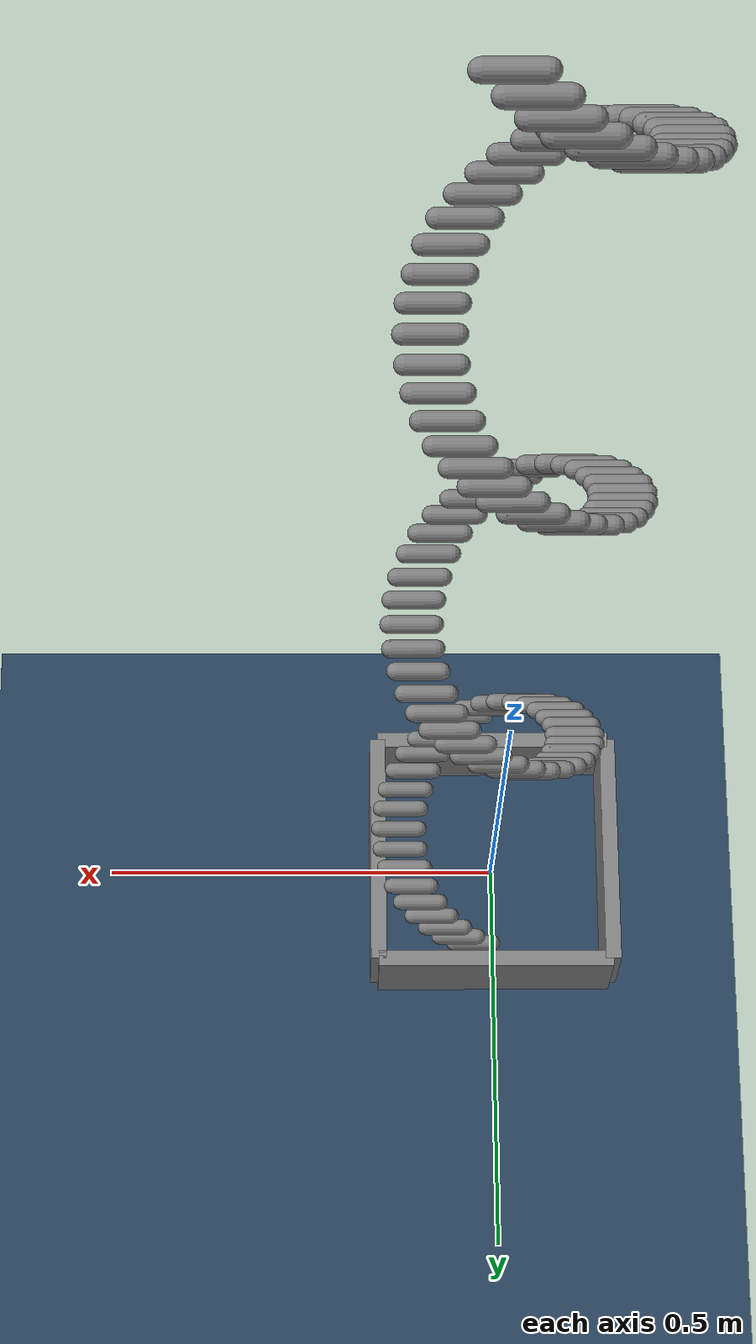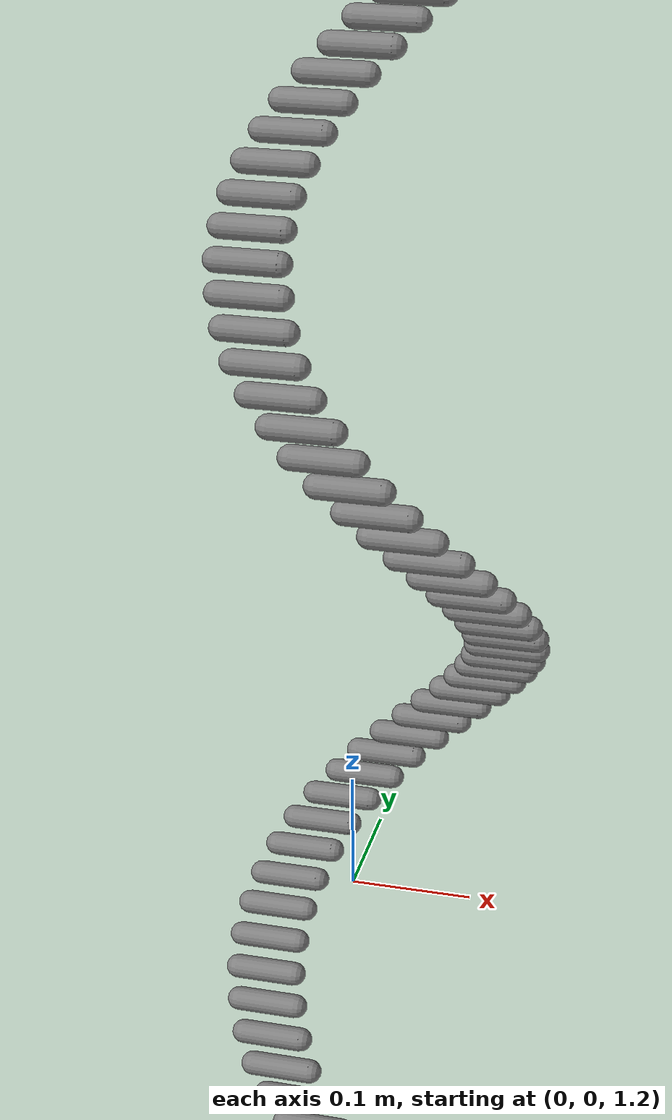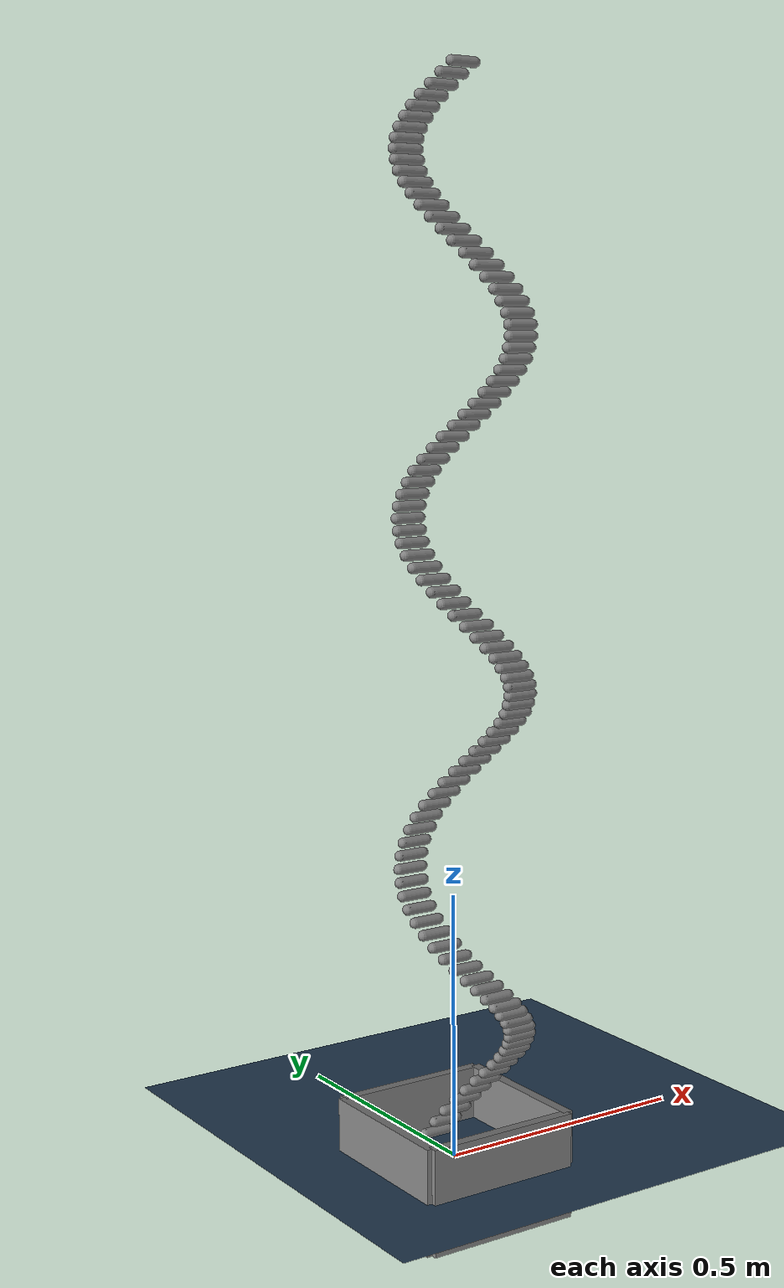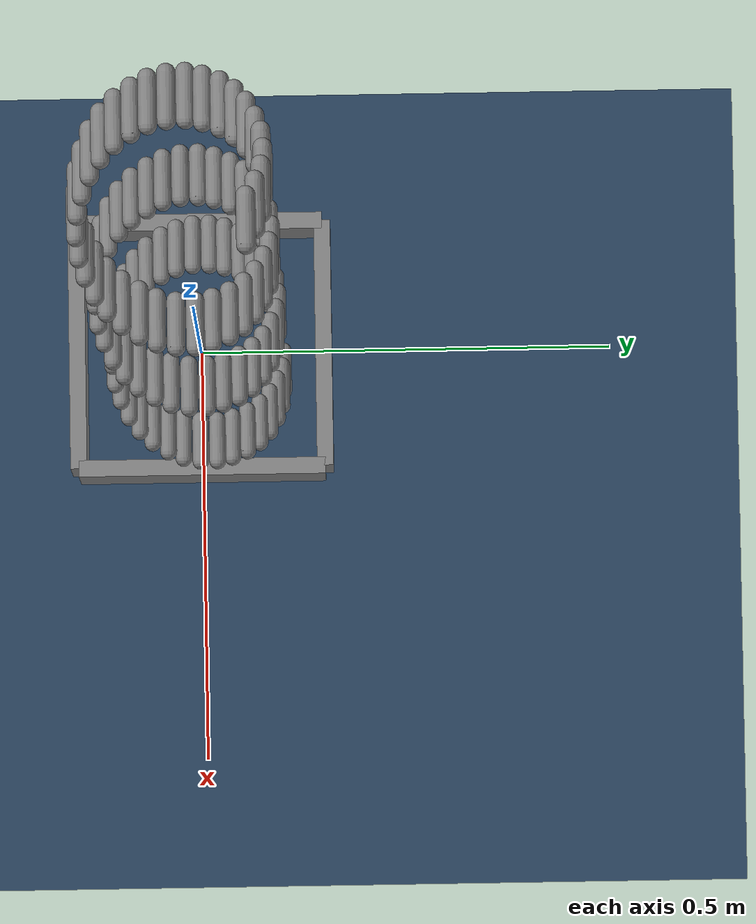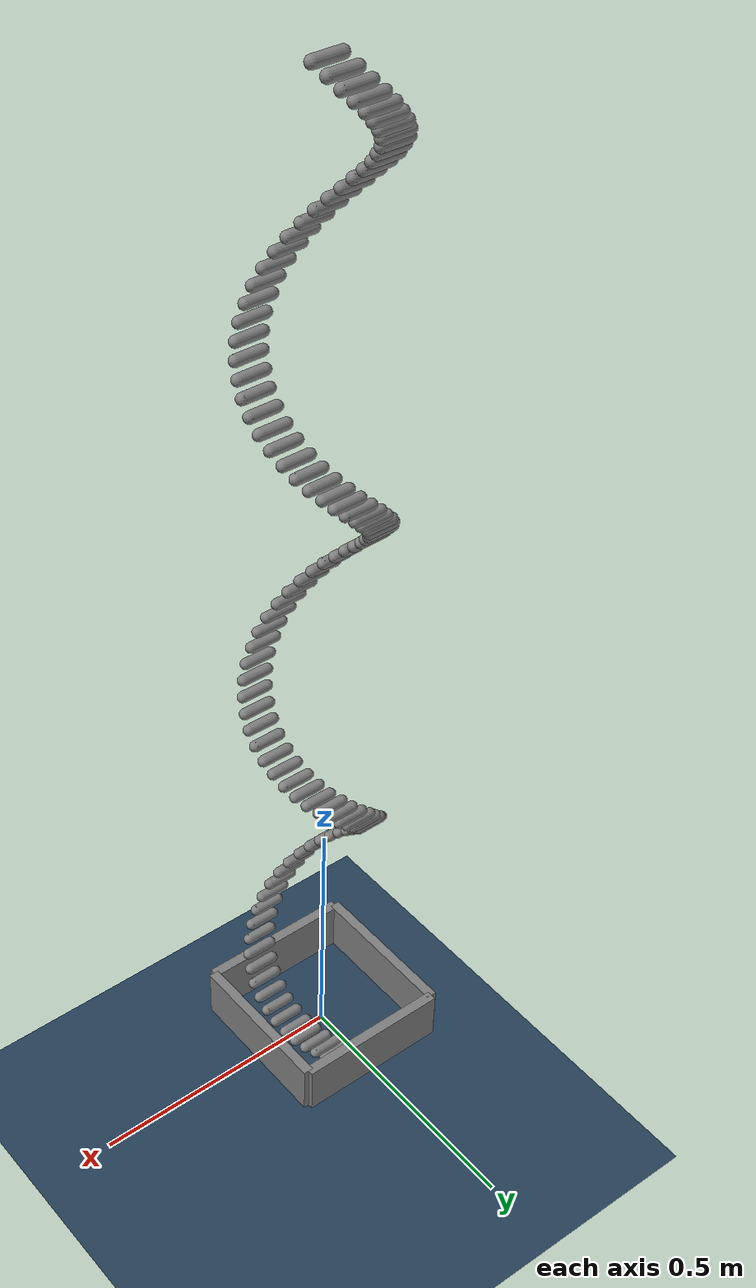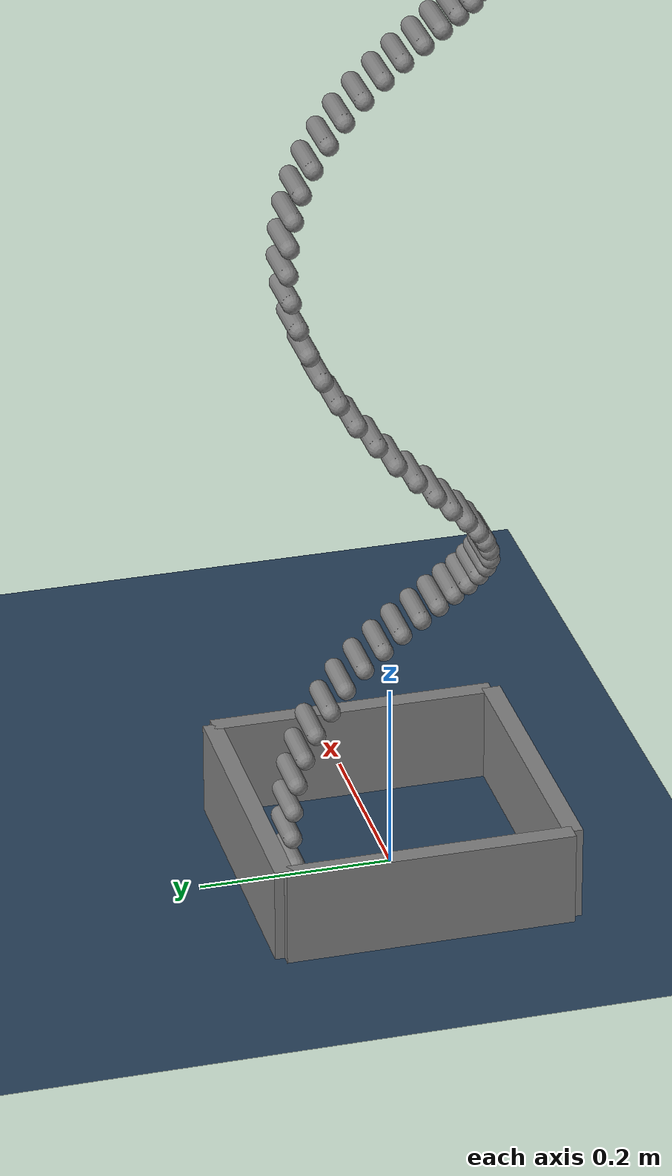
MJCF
<mujoco model="capsules">
  <option iterations="10" ls_iterations="10" timestep="0.001">
    <flag eulerdamp="disable"/>
  </option>

  <custom>
    <numeric data="200" name="max_contact_points"/>
    <numeric data="200" name="max_geom_pairs"/>
  </custom>

  <asset>
    <texture type="skybox" builtin="gradient" rgb1="0.3 0.5 0.7" rgb2="0 0 0" width="512" height="3072"/>
    <texture type="2d" name="groundplane" builtin="checker" mark="edge" rgb1="0.2 0.3 0.4" rgb2="0.1 0.2 0.3"
      markrgb="0.8 0.8 0.8" width="300" height="300"/>
    <material name="groundplane" texture="groundplane" texuniform="true" texrepeat="5 5" reflectance="0.2"/>
  </asset>

  <statistic center="0 0 0.1" extent="0.4" meansize="0.02"/>

  <visual>
    <headlight diffuse="0.6 0.6 0.6" ambient="0.3 0.3 0.3" specular="0 0 0"/>
    <rgba haze="0.15 0.25 0.35 1"/>
    <global azimuth="120" elevation="-10"/>
  </visual>

  <worldbody>
    <light pos="0 0 1.5" directional="true"/>
    <geom name="floor" size="0 0 0.05" type="plane" material="groundplane"/>
    <geom type="box" size="0.01 0.15 0.1" pos="0.15 0.0 0.0"/>
    <geom type="box" size="0.01 0.15 0.1" pos="-0.15 0.0 0.0"/>
    <geom type="box" size="0.15 0.01 0.1" pos="0.0 0.15 0.0"/>
    <geom type="box" size="0.15 0.01 0.1" pos="0.0 -0.15 0.0"/>
    <body pos="0.000 0.100 0.010">
      <freejoint/>
      <geom type="capsule" fromto="0 0 0 0.05 0 0 " size="0.01"/>
    </body>
    <body pos="0.020 0.098 0.030">
      <freejoint/>
      <geom type="capsule" fromto="0 0 0 0.05 0 0 " size="0.01"/>
    </body>
    <body pos="0.038 0.092 0.050">
      <freejoint/>
      <geom type="capsule" fromto="0 0 0 0.05 0 0 " size="0.01"/>
    </body>
    <body pos="0.056 0.083 0.070">
      <freejoint/>
      <geom type="capsule" fromto="0 0 0 0.05 0 0 " size="0.01"/>
    </body>
    <body pos="0.071 0.071 0.090">
      <freejoint/>
      <geom type="capsule" fromto="0 0 0 0.05 0 0 " size="0.01"/>
    </body>
    <body pos="0.083 0.056 0.110">
      <freejoint/>
      <geom type="capsule" fromto="0 0 0 0.05 0 0 " size="0.01"/>
    </body>
    <body pos="0.092 0.038 0.130">
      <freejoint/>
      <geom type="capsule" fromto="0 0 0 0.05 0 0 " size="0.01"/>
    </body>
    <body pos="0.098 0.020 0.150">
      <freejoint/>
      <geom type="capsule" fromto="0 0 0 0.05 0 0 " size="0.01"/>
    </body>
    <body pos="0.100 0.000 0.170">
      <freejoint/>
      <geom type="capsule" fromto="0 0 0 0.05 0 0 " size="0.01"/>
    </body>
    <body pos="0.098 -0.020 0.190">
      <freejoint/>
      <geom type="capsule" fromto="0 0 0 0.05 0 0 " size="0.01"/>
    </body>
    <body pos="0.092 -0.038 0.210">
      <freejoint/>
      <geom type="capsule" fromto="0 0 0 0.05 0 0 " size="0.01"/>
    </body>
    <body pos="0.083 -0.056 0.230">
      <freejoint/>
      <geom type="capsule" fromto="0 0 0 0.05 0 0 " size="0.01"/>
    </body>
    <body pos="0.071 -0.071 0.250">
      <freejoint/>
      <geom type="capsule" fromto="0 0 0 0.05 0 0 " size="0.01"/>
    </body>
    <body pos="0.056 -0.083 0.270">
      <freejoint/>
      <geom type="capsule" fromto="0 0 0 0.05 0 0 " size="0.01"/>
    </body>
    <body pos="0.038 -0.092 0.290">
      <freejoint/>
      <geom type="capsule" fromto="0 0 0 0.05 0 0 " size="0.01"/>
    </body>
    <body pos="0.020 -0.098 0.310">
      <freejoint/>
      <geom type="capsule" fromto="0 0 0 0.05 0 0 " size="0.01"/>
    </body>
    <body pos="0.000 -0.100 0.330">
      <freejoint/>
      <geom type="capsule" fromto="0 0 0 0.05 0 0 " size="0.01"/>
    </body>
    <body pos="-0.020 -0.098 0.350">
      <freejoint/>
      <geom type="capsule" fromto="0 0 0 0.05 0 0 " size="0.01"/>
    </body>
    <body pos="-0.038 -0.092 0.370">
      <freejoint/>
      <geom type="capsule" fromto="0 0 0 0.05 0 0 " size="0.01"/>
    </body>
    <body pos="-0.056 -0.083 0.390">
      <freejoint/>
      <geom type="capsule" fromto="0 0 0 0.05 0 0 " size="0.01"/>
    </body>
    <body pos="-0.071 -0.071 0.410">
      <freejoint/>
      <geom type="capsule" fromto="0 0 0 0.05 0 0 " size="0.01"/>
    </body>
    <body pos="-0.083 -0.056 0.430">
      <freejoint/>
      <geom type="capsule" fromto="0 0 0 0.05 0 0 " size="0.01"/>
    </body>
    <body pos="-0.092 -0.038 0.450">
      <freejoint/>
      <geom type="capsule" fromto="0 0 0 0.05 0 0 " size="0.01"/>
    </body>
    <body pos="-0.098 -0.020 0.470">
      <freejoint/>
      <geom type="capsule" fromto="0 0 0 0.05 0 0 " size="0.01"/>
    </body>
    <body pos="-0.100 -0.000 0.490">
      <freejoint/>
      <geom type="capsule" fromto="0 0 0 0.05 0 0 " size="0.01"/>
    </body>
    <body pos="-0.098 0.020 0.510">
      <freejoint/>
      <geom type="capsule" fromto="0 0 0 0.05 0 0 " size="0.01"/>
    </body>
    <body pos="-0.092 0.038 0.530">
      <freejoint/>
      <geom type="capsule" fromto="0 0 0 0.05 0 0 " size="0.01"/>
    </body>
    <body pos="-0.083 0.056 0.550">
      <freejoint/>
      <geom type="capsule" fromto="0 0 0 0.05 0 0 " size="0.01"/>
    </body>
    <body pos="-0.071 0.071 0.570">
      <freejoint/>
      <geom type="capsule" fromto="0 0 0 0.05 0 0 " size="0.01"/>
    </body>
    <body pos="-0.056 0.083 0.590">
      <freejoint/>
      <geom type="capsule" fromto="0 0 0 0.05 0 0 " size="0.01"/>
    </body>
    <body pos="-0.038 0.092 0.610">
      <freejoint/>
      <geom type="capsule" fromto="0 0 0 0.05 0 0 " size="0.01"/>
    </body>
    <body pos="-0.020 0.098 0.630">
      <freejoint/>
      <geom type="capsule" fromto="0 0 0 0.05 0 0 " size="0.01"/>
    </body>
    <body pos="-0.000 0.100 0.650">
      <freejoint/>
      <geom type="capsule" fromto="0 0 0 0.05 0 0 " size="0.01"/>
    </body>
    <body pos="0.020 0.098 0.670">
      <freejoint/>
      <geom type="capsule" fromto="0 0 0 0.05 0 0 " size="0.01"/>
    </body>
    <body pos="0.038 0.092 0.690">
      <freejoint/>
      <geom type="capsule" fromto="0 0 0 0.05 0 0 " size="0.01"/>
    </body>
    <body pos="0.056 0.083 0.710">
      <freejoint/>
      <geom type="capsule" fromto="0 0 0 0.05 0 0 " size="0.01"/>
    </body>
    <body pos="0.071 0.071 0.730">
      <freejoint/>
      <geom type="capsule" fromto="0 0 0 0.05 0 0 " size="0.01"/>
    </body>
    <body pos="0.083 0.056 0.750">
      <freejoint/>
      <geom type="capsule" fromto="0 0 0 0.05 0 0 " size="0.01"/>
    </body>
    <body pos="0.092 0.038 0.770">
      <freejoint/>
      <geom type="capsule" fromto="0 0 0 0.05 0 0 " size="0.01"/>
    </body>
    <body pos="0.098 0.020 0.790">
      <freejoint/>
      <geom type="capsule" fromto="0 0 0 0.05 0 0 " size="0.01"/>
    </body>
    <body pos="0.100 0.000 0.810">
      <freejoint/>
      <geom type="capsule" fromto="0 0 0 0.05 0 0 " size="0.01"/>
    </body>
    <body pos="0.098 -0.020 0.830">
      <freejoint/>
      <geom type="capsule" fromto="0 0 0 0.05 0 0 " size="0.01"/>
    </body>
    <body pos="0.092 -0.038 0.850">
      <freejoint/>
      <geom type="capsule" fromto="0 0 0 0.05 0 0 " size="0.01"/>
    </body>
    <body pos="0.083 -0.056 0.870">
      <freejoint/>
      <geom type="capsule" fromto="0 0 0 0.05 0 0 " size="0.01"/>
    </body>
    <body pos="0.071 -0.071 0.890">
      <freejoint/>
      <geom type="capsule" fromto="0 0 0 0.05 0 0 " size="0.01"/>
    </body>
    <body pos="0.056 -0.083 0.910">
      <freejoint/>
      <geom type="capsule" fromto="0 0 0 0.05 0 0 " size="0.01"/>
    </body>
    <body pos="0.038 -0.092 0.930">
      <freejoint/>
      <geom type="capsule" fromto="0 0 0 0.05 0 0 " size="0.01"/>
    </body>
    <body pos="0.020 -0.098 0.950">
      <freejoint/>
      <geom type="capsule" fromto="0 0 0 0.05 0 0 " size="0.01"/>
    </body>
    <body pos="0.000 -0.100 0.970">
      <freejoint/>
      <geom type="capsule" fromto="0 0 0 0.05 0 0 " size="0.01"/>
    </body>
    <body pos="-0.020 -0.098 0.990">
      <freejoint/>
      <geom type="capsule" fromto="0 0 0 0.05 0 0 " size="0.01"/>
    </body>
    <body pos="-0.038 -0.092 1.010">
      <freejoint/>
      <geom type="capsule" fromto="0 0 0 0.05 0 0 " size="0.01"/>
    </body>
    <body pos="-0.056 -0.083 1.030">
      <freejoint/>
      <geom type="capsule" fromto="0 0 0 0.05 0 0 " size="0.01"/>
    </body>
    <body pos="-0.071 -0.071 1.050">
      <freejoint/>
      <geom type="capsule" fromto="0 0 0 0.05 0 0 " size="0.01"/>
    </body>
    <body pos="-0.083 -0.056 1.070">
      <freejoint/>
      <geom type="capsule" fromto="0 0 0 0.05 0 0 " size="0.01"/>
    </body>
    <body pos="-0.092 -0.038 1.090">
      <freejoint/>
      <geom type="capsule" fromto="0 0 0 0.05 0 0 " size="0.01"/>
    </body>
    <body pos="-0.098 -0.020 1.110">
      <freejoint/>
      <geom type="capsule" fromto="0 0 0 0.05 0 0 " size="0.01"/>
    </body>
    <body pos="-0.100 -0.000 1.130">
      <freejoint/>
      <geom type="capsule" fromto="0 0 0 0.05 0 0 " size="0.01"/>
    </body>
    <body pos="-0.098 0.020 1.150">
      <freejoint/>
      <geom type="capsule" fromto="0 0 0 0.05 0 0 " size="0.01"/>
    </body>
    <body pos="-0.092 0.038 1.170">
      <freejoint/>
      <geom type="capsule" fromto="0 0 0 0.05 0 0 " size="0.01"/>
    </body>
    <body pos="-0.083 0.056 1.190">
      <freejoint/>
      <geom type="capsule" fromto="0 0 0 0.05 0 0 " size="0.01"/>
    </body>
    <body pos="-0.071 0.071 1.210">
      <freejoint/>
      <geom type="capsule" fromto="0 0 0 0.05 0 0 " size="0.01"/>
    </body>
    <body pos="-0.056 0.083 1.230">
      <freejoint/>
      <geom type="capsule" fromto="0 0 0 0.05 0 0 " size="0.01"/>
    </body>
    <body pos="-0.038 0.092 1.250">
      <freejoint/>
      <geom type="capsule" fromto="0 0 0 0.05 0 0 " size="0.01"/>
    </body>
    <body pos="-0.020 0.098 1.270">
      <freejoint/>
      <geom type="capsule" fromto="0 0 0 0.05 0 0 " size="0.01"/>
    </body>
    <body pos="-0.000 0.100 1.290">
      <freejoint/>
      <geom type="capsule" fromto="0 0 0 0.05 0 0 " size="0.01"/>
    </body>
    <body pos="0.020 0.098 1.310">
      <freejoint/>
      <geom type="capsule" fromto="0 0 0 0.05 0 0 " size="0.01"/>
    </body>
    <body pos="0.038 0.092 1.330">
      <freejoint/>
      <geom type="capsule" fromto="0 0 0 0.05 0 0 " size="0.01"/>
    </body>
    <body pos="0.056 0.083 1.350">
      <freejoint/>
      <geom type="capsule" fromto="0 0 0 0.05 0 0 " size="0.01"/>
    </body>
    <body pos="0.071 0.071 1.370">
      <freejoint/>
      <geom type="capsule" fromto="0 0 0 0.05 0 0 " size="0.01"/>
    </body>
    <body pos="0.083 0.056 1.390">
      <freejoint/>
      <geom type="capsule" fromto="0 0 0 0.05 0 0 " size="0.01"/>
    </body>
    <body pos="0.092 0.038 1.410">
      <freejoint/>
      <geom type="capsule" fromto="0 0 0 0.05 0 0 " size="0.01"/>
    </body>
    <body pos="0.098 0.020 1.430">
      <freejoint/>
      <geom type="capsule" fromto="0 0 0 0.05 0 0 " size="0.01"/>
    </body>
    <body pos="0.100 0.000 1.450">
      <freejoint/>
      <geom type="capsule" fromto="0 0 0 0.05 0 0 " size="0.01"/>
    </body>
    <body pos="0.098 -0.020 1.470">
      <freejoint/>
      <geom type="capsule" fromto="0 0 0 0.05 0 0 " size="0.01"/>
    </body>
    <body pos="0.092 -0.038 1.490">
      <freejoint/>
      <geom type="capsule" fromto="0 0 0 0.05 0 0 " size="0.01"/>
    </body>
    <body pos="0.083 -0.056 1.510">
      <freejoint/>
      <geom type="capsule" fromto="0 0 0 0.05 0 0 " size="0.01"/>
    </body>
    <body pos="0.071 -0.071 1.530">
      <freejoint/>
      <geom type="capsule" fromto="0 0 0 0.05 0 0 " size="0.01"/>
    </body>
    <body pos="0.056 -0.083 1.550">
      <freejoint/>
      <geom type="capsule" fromto="0 0 0 0.05 0 0 " size="0.01"/>
    </body>
    <body pos="0.038 -0.092 1.570">
      <freejoint/>
      <geom type="capsule" fromto="0 0 0 0.05 0 0 " size="0.01"/>
    </body>
    <body pos="0.020 -0.098 1.590">
      <freejoint/>
      <geom type="capsule" fromto="0 0 0 0.05 0 0 " size="0.01"/>
    </body>
    <body pos="0.000 -0.100 1.610">
      <freejoint/>
      <geom type="capsule" fromto="0 0 0 0.05 0 0 " size="0.01"/>
    </body>
    <body pos="-0.020 -0.098 1.630">
      <freejoint/>
      <geom type="capsule" fromto="0 0 0 0.05 0 0 " size="0.01"/>
    </body>
    <body pos="-0.038 -0.092 1.650">
      <freejoint/>
      <geom type="capsule" fromto="0 0 0 0.05 0 0 " size="0.01"/>
    </body>
    <body pos="-0.056 -0.083 1.670">
      <freejoint/>
      <geom type="capsule" fromto="0 0 0 0.05 0 0 " size="0.01"/>
    </body>
    <body pos="-0.071 -0.071 1.690">
      <freejoint/>
      <geom type="capsule" fromto="0 0 0 0.05 0 0 " size="0.01"/>
    </body>
    <body pos="-0.083 -0.056 1.710">
      <freejoint/>
      <geom type="capsule" fromto="0 0 0 0.05 0 0 " size="0.01"/>
    </body>
    <body pos="-0.092 -0.038 1.730">
      <freejoint/>
      <geom type="capsule" fromto="0 0 0 0.05 0 0 " size="0.01"/>
    </body>
    <body pos="-0.098 -0.020 1.750">
      <freejoint/>
      <geom type="capsule" fromto="0 0 0 0.05 0 0 " size="0.01"/>
    </body>
    <body pos="-0.100 -0.000 1.770">
      <freejoint/>
      <geom type="capsule" fromto="0 0 0 0.05 0 0 " size="0.01"/>
    </body>
    <body pos="-0.098 0.020 1.790">
      <freejoint/>
      <geom type="capsule" fromto="0 0 0 0.05 0 0 " size="0.01"/>
    </body>
    <body pos="-0.092 0.038 1.810">
      <freejoint/>
      <geom type="capsule" fromto="0 0 0 0.05 0 0 " size="0.01"/>
    </body>
    <body pos="-0.083 0.056 1.830">
      <freejoint/>
      <geom type="capsule" fromto="0 0 0 0.05 0 0 " size="0.01"/>
    </body>
    <body pos="-0.071 0.071 1.850">
      <freejoint/>
      <geom type="capsule" fromto="0 0 0 0.05 0 0 " size="0.01"/>
    </body>
    <body pos="-0.056 0.083 1.870">
      <freejoint/>
      <geom type="capsule" fromto="0 0 0 0.05 0 0 " size="0.01"/>
    </body>
    <body pos="-0.038 0.092 1.890">
      <freejoint/>
      <geom type="capsule" fromto="0 0 0 0.05 0 0 " size="0.01"/>
    </body>
    <body pos="-0.020 0.098 1.910">
      <freejoint/>
      <geom type="capsule" fromto="0 0 0 0.05 0 0 " size="0.01"/>
    </body>
    <body pos="-0.000 0.100 1.930">
      <freejoint/>
      <geom type="capsule" fromto="0 0 0 0.05 0 0 " size="0.01"/>
    </body>
    <body pos="0.020 0.098 1.950">
      <freejoint/>
      <geom type="capsule" fromto="0 0 0 0.05 0 0 " size="0.01"/>
    </body>
    <body pos="0.038 0.092 1.970">
      <freejoint/>
      <geom type="capsule" fromto="0 0 0 0.05 0 0 " size="0.01"/>
    </body>
    <body pos="0.056 0.083 1.990">
      <freejoint/>
      <geom type="capsule" fromto="0 0 0 0.05 0 0 " size="0.01"/>
    </body>
  </worldbody>
</mujoco>
